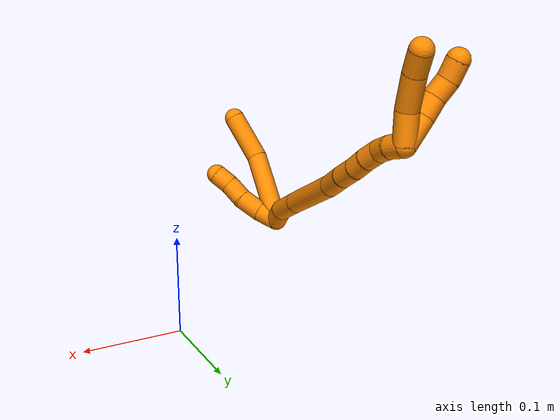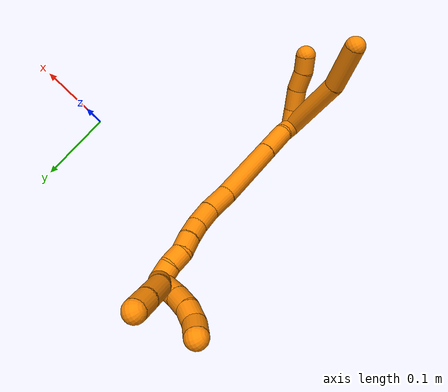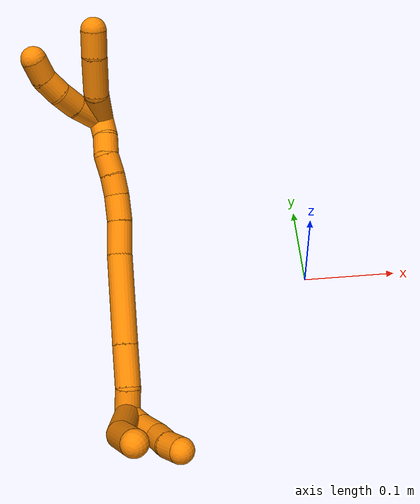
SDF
<sdf version="1.7">
 <world name="default">
  <model name="19">
   <static>0</static>
   <link name="19">
    <collision name="collision-cylinder-e_1_2_8">
     <pose>0.018782 0.003509 0.04082 -0.085746 0.42983 -0.018728</pose>
     <geometry><cylinder><radius>0.0125</radius><length>0.090141</length></cylinder></geometry>
     <surface>
      <friction><ode><mu>1.16</mu><mu2>1.16</mu2><slip1>0</slip1><slip2>0</slip2></ode></friction>
      <contact><ode><kp>1e+06</kp><kd>1</kd><max_vel>0</max_vel><min_depth>0.001</min_depth></ode></contact>
     </surface>
    </collision>
    <visual name="visual-cylinder-e_1_2_8">
     <pose>0.018782 0.003509 0.04082 -0.085746 0.42983 -0.018728</pose>
     <geometry><cylinder><radius>0.0125</radius><length>0.090141</length></cylinder></geometry>
     <material><ambient>0.996078 0.537255 0 1</ambient></material>
    </visual>
    <collision name="collision-cylinder-e_2_8_6">
     <pose>0.056872 0.006482 0.104503 0.023421 0.701189 0.008566</pose>
     <geometry><cylinder><radius>0.0125</radius><length>0.059859</length></cylinder></geometry>
     <surface>
      <friction><ode><mu>1.16</mu><mu2>1.16</mu2><slip1>0</slip1><slip2>0</slip2></ode></friction>
      <contact><ode><kp>1e+06</kp><kd>1</kd><max_vel>0</max_vel><min_depth>0.001</min_depth></ode></contact>
     </surface>
    </collision>
    <visual name="visual-cylinder-e_2_8_6">
     <pose>0.056872 0.006482 0.104503 0.023421 0.701189 0.008566</pose>
     <geometry><cylinder><radius>0.0125</radius><length>0.059859</length></cylinder></geometry>
     <material><ambient>0.996078 0.537255 0 1</ambient></material>
    </visual>
    <collision name="collision-cylinder-e_1_2_9">
     <pose>0.007206 -0.006854 0.007191 0.761363 0.627589 0.2583</pose>
     <geometry><cylinder><radius>0.0125</radius><length>0.024545</length></cylinder></geometry>
     <surface>
      <friction><ode><mu>1.16</mu><mu2>1.16</mu2><slip1>0</slip1><slip2>0</slip2></ode></friction>
      <contact><ode><kp>1e+06</kp><kd>1</kd><max_vel>0</max_vel><min_depth>0.001</min_depth></ode></contact>
     </surface>
    </collision>
    <visual name="visual-cylinder-e_1_2_9">
     <pose>0.007206 -0.006854 0.007191 0.761363 0.627589 0.2583</pose>
     <geometry><cylinder><radius>0.0125</radius><length>0.024545</length></cylinder></geometry>
     <material><ambient>0.996078 0.537255 0 1</ambient></material>
    </visual>
    <collision name="collision-cylinder-e_2_9_10">
     <pose>0.024142 -0.019498 0.022889 0.597696 0.757388 0.243948</pose>
     <geometry><cylinder><radius>0.0125</radius><length>0.028323</length></cylinder></geometry>
     <surface>
      <friction><ode><mu>1.16</mu><mu2>1.16</mu2><slip1>0</slip1><slip2>0</slip2></ode></friction>
      <contact><ode><kp>1e+06</kp><kd>1</kd><max_vel>0</max_vel><min_depth>0.001</min_depth></ode></contact>
     </surface>
    </collision>
    <visual name="visual-cylinder-e_2_9_10">
     <pose>0.024142 -0.019498 0.022889 0.597696 0.757388 0.243948</pose>
     <geometry><cylinder><radius>0.0125</radius><length>0.028323</length></cylinder></geometry>
     <material><ambient>0.996078 0.537255 0 1</ambient></material>
    </visual>
    <collision name="collision-cylinder-e_3_10_11">
     <pose>0.041636 -0.028437 0.040858 0.321171 0.661527 0.111127</pose>
     <geometry><cylinder><radius>0.0125</radius><length>0.025278</length></cylinder></geometry>
     <surface>
      <friction><ode><mu>1.16</mu><mu2>1.16</mu2><slip1>0</slip1><slip2>0</slip2></ode></friction>
      <contact><ode><kp>1e+06</kp><kd>1</kd><max_vel>0</max_vel><min_depth>0.001</min_depth></ode></contact>
     </surface>
    </collision>
    <visual name="visual-cylinder-e_3_10_11">
     <pose>0.041636 -0.028437 0.040858 0.321171 0.661527 0.111127</pose>
     <geometry><cylinder><radius>0.0125</radius><length>0.025278</length></cylinder></geometry>
     <material><ambient>0.996078 0.537255 0 1</ambient></material>
    </visual>
    <collision name="collision-cylinder-e_4_11_5">
     <pose>0.057528 -0.035138 0.056701 0.508078 0.838804 0.230506</pose>
     <geometry><cylinder><radius>0.0125</radius><length>0.021854</length></cylinder></geometry>
     <surface>
      <friction><ode><mu>1.16</mu><mu2>1.16</mu2><slip1>0</slip1><slip2>0</slip2></ode></friction>
      <contact><ode><kp>1e+06</kp><kd>1</kd><max_vel>0</max_vel><min_depth>0.001</min_depth></ode></contact>
     </surface>
    </collision>
    <visual name="visual-cylinder-e_4_11_5">
     <pose>0.057528 -0.035138 0.056701 0.508078 0.838804 0.230506</pose>
     <geometry><cylinder><radius>0.0125</radius><length>0.021854</length></cylinder></geometry>
     <material><ambient>0.996078 0.537255 0 1</ambient></material>
    </visual>
    <collision name="collision-cylinder-e_1_2_12">
     <pose>0.007463 0.01041 -0.003041 -1.85498 0.602716 -0.786058</pose>
     <geometry><cylinder><radius>0.0125</radius><length>0.02633</length></cylinder></geometry>
     <surface>
      <friction><ode><mu>1.16</mu><mu2>1.16</mu2><slip1>0</slip1><slip2>0</slip2></ode></friction>
      <contact><ode><kp>1e+06</kp><kd>1</kd><max_vel>0</max_vel><min_depth>0.001</min_depth></ode></contact>
     </surface>
    </collision>
    <visual name="visual-cylinder-e_1_2_12">
     <pose>0.007463 0.01041 -0.003041 -1.85498 0.602716 -0.786058</pose>
     <geometry><cylinder><radius>0.0125</radius><length>0.02633</length></cylinder></geometry>
     <material><ambient>0.996078 0.537255 0 1</ambient></material>
    </visual>
    <collision name="collision-cylinder-e_2_12_13">
     <pose>0.022274 0.037791 -0.015684 -2.08573 0.360396 -0.605586</pose>
     <geometry><cylinder><radius>0.0125</radius><length>0.041675</length></cylinder></geometry>
     <surface>
      <friction><ode><mu>1.16</mu><mu2>1.16</mu2><slip1>0</slip1><slip2>0</slip2></ode></friction>
      <contact><ode><kp>1e+06</kp><kd>1</kd><max_vel>0</max_vel><min_depth>0.001</min_depth></ode></contact>
     </surface>
    </collision>
    <visual name="visual-cylinder-e_2_12_13">
     <pose>0.022274 0.037791 -0.015684 -2.08573 0.360396 -0.605586</pose>
     <geometry><cylinder><radius>0.0125</radius><length>0.041675</length></cylinder></geometry>
     <material><ambient>0.996078 0.537255 0 1</ambient></material>
    </visual>
    <collision name="collision-cylinder-e_3_13_14">
     <pose>0.045083 0.090897 -0.046651 -2.10473 0.352881 -0.605833</pose>
     <geometry><cylinder><radius>0.0125</radius><length>0.089472</length></cylinder></geometry>
     <surface>
      <friction><ode><mu>1.16</mu><mu2>1.16</mu2><slip1>0</slip1><slip2>0</slip2></ode></friction>
      <contact><ode><kp>1e+06</kp><kd>1</kd><max_vel>0</max_vel><min_depth>0.001</min_depth></ode></contact>
     </surface>
    </collision>
    <visual name="visual-cylinder-e_3_13_14">
     <pose>0.045083 0.090897 -0.046651 -2.10473 0.352881 -0.605833</pose>
     <geometry><cylinder><radius>0.0125</radius><length>0.089472</length></cylinder></geometry>
     <material><ambient>0.996078 0.537255 0 1</ambient></material>
    </visual>
    <collision name="collision-cylinder-e_4_14_15">
     <pose>0.06789 0.14035 -0.075389 -2.07647 0.449654 -0.740297</pose>
     <geometry><cylinder><radius>0.0125</radius><length>0.033802</length></cylinder></geometry>
     <surface>
      <friction><ode><mu>1.16</mu><mu2>1.16</mu2><slip1>0</slip1><slip2>0</slip2></ode></friction>
      <contact><ode><kp>1e+06</kp><kd>1</kd><max_vel>0</max_vel><min_depth>0.001</min_depth></ode></contact>
     </surface>
    </collision>
    <visual name="visual-cylinder-e_4_14_15">
     <pose>0.06789 0.14035 -0.075389 -2.07647 0.449654 -0.740297</pose>
     <geometry><cylinder><radius>0.0125</radius><length>0.033802</length></cylinder></geometry>
     <material><ambient>0.996078 0.537255 0 1</ambient></material>
    </visual>
    <collision name="collision-cylinder-e_5_15_16">
     <pose>0.079903 0.165042 -0.087997 -2.00214 0.356747 -0.548701</pose>
     <geometry><cylinder><radius>0.0125</radius><length>0.026729</length></cylinder></geometry>
     <surface>
      <friction><ode><mu>1.16</mu><mu2>1.16</mu2><slip1>0</slip1><slip2>0</slip2></ode></friction>
      <contact><ode><kp>1e+06</kp><kd>1</kd><max_vel>0</max_vel><min_depth>0.001</min_depth></ode></contact>
     </surface>
    </collision>
    <visual name="visual-cylinder-e_5_15_16">
     <pose>0.079903 0.165042 -0.087997 -2.00214 0.356747 -0.548701</pose>
     <geometry><cylinder><radius>0.0125</radius><length>0.026729</length></cylinder></geometry>
     <material><ambient>0.996078 0.537255 0 1</ambient></material>
    </visual>
    <collision name="collision-cylinder-e_6_16_17">
     <pose>0.088075 0.185824 -0.095852 -1.84231 0.344604 -0.450411</pose>
     <geometry><cylinder><radius>0.0125</radius><length>0.020747</length></cylinder></geometry>
     <surface>
      <friction><ode><mu>1.16</mu><mu2>1.16</mu2><slip1>0</slip1><slip2>0</slip2></ode></friction>
      <contact><ode><kp>1e+06</kp><kd>1</kd><max_vel>0</max_vel><min_depth>0.001</min_depth></ode></contact>
     </surface>
    </collision>
    <visual name="visual-cylinder-e_6_16_17">
     <pose>0.088075 0.185824 -0.095852 -1.84231 0.344604 -0.450411</pose>
     <geometry><cylinder><radius>0.0125</radius><length>0.020747</length></cylinder></geometry>
     <material><ambient>0.996078 0.537255 0 1</ambient></material>
    </visual>
    <collision name="collision-cylinder-e_7_17_18">
     <pose>0.093994 0.204981 -0.101186 -1.84243 0.234164 -0.307271</pose>
     <geometry><cylinder><radius>0.0125</radius><length>0.020812</length></cylinder></geometry>
     <surface>
      <friction><ode><mu>1.16</mu><mu2>1.16</mu2><slip1>0</slip1><slip2>0</slip2></ode></friction>
      <contact><ode><kp>1e+06</kp><kd>1</kd><max_vel>0</max_vel><min_depth>0.001</min_depth></ode></contact>
     </surface>
    </collision>
    <visual name="visual-cylinder-e_7_17_18">
     <pose>0.093994 0.204981 -0.101186 -1.84243 0.234164 -0.307271</pose>
     <geometry><cylinder><radius>0.0125</radius><length>0.020812</length></cylinder></geometry>
     <material><ambient>0.996078 0.537255 0 1</ambient></material>
    </visual>
    <collision name="collision-cylinder-e_8_18_19">
     <pose>0.099592 0.222684 -0.109299 -2.1671 0.319832 -0.590993</pose>
     <geometry><cylinder><radius>0.0125</radius><length>0.02025</length></cylinder></geometry>
     <surface>
      <friction><ode><mu>1.16</mu><mu2>1.16</mu2><slip1>0</slip1><slip2>0</slip2></ode></friction>
      <contact><ode><kp>1e+06</kp><kd>1</kd><max_vel>0</max_vel><min_depth>0.001</min_depth></ode></contact>
     </surface>
    </collision>
    <visual name="visual-cylinder-e_8_18_19">
     <pose>0.099592 0.222684 -0.109299 -2.1671 0.319832 -0.590993</pose>
     <geometry><cylinder><radius>0.0125</radius><length>0.02025</length></cylinder></geometry>
     <material><ambient>0.996078 0.537255 0 1</ambient></material>
    </visual>
    <collision name="collision-cylinder-e_9_19_1">
     <pose>0.103648 0.238819 -0.12054 -2.19094 0.086559 -0.167889</pose>
     <geometry><cylinder><radius>0.0125</radius><length>0.020183</length></cylinder></geometry>
     <surface>
      <friction><ode><mu>1.16</mu><mu2>1.16</mu2><slip1>0</slip1><slip2>0</slip2></ode></friction>
      <contact><ode><kp>1e+06</kp><kd>1</kd><max_vel>0</max_vel><min_depth>0.001</min_depth></ode></contact>
     </surface>
    </collision>
    <visual name="visual-cylinder-e_9_19_1">
     <pose>0.103648 0.238819 -0.12054 -2.19094 0.086559 -0.167889</pose>
     <geometry><cylinder><radius>0.0125</radius><length>0.020183</length></cylinder></geometry>
     <material><ambient>0.996078 0.537255 0 1</ambient></material>
    </visual>
    <collision name="collision-cylinder-e_1_1_20">
     <pose>0.103251 0.259255 -0.114714 -0.80989 -0.074875 0.032106</pose>
     <geometry><cylinder><radius>0.0125</radius><length>0.033937</length></cylinder></geometry>
     <surface>
      <friction><ode><mu>1.16</mu><mu2>1.16</mu2><slip1>0</slip1><slip2>0</slip2></ode></friction>
      <contact><ode><kp>1e+06</kp><kd>1</kd><max_vel>0</max_vel><min_depth>0.001</min_depth></ode></contact>
     </surface>
    </collision>
    <visual name="visual-cylinder-e_1_1_20">
     <pose>0.103251 0.259255 -0.114714 -0.80989 -0.074875 0.032106</pose>
     <geometry><cylinder><radius>0.0125</radius><length>0.033937</length></cylinder></geometry>
     <material><ambient>0.996078 0.537255 0 1</ambient></material>
    </visual>
    <collision name="collision-cylinder-e_2_20_21">
     <pose>0.102472 0.280517 -0.095864 -0.897702 0.042537 -0.02049</pose>
     <geometry><cylinder><radius>0.0125</radius><length>0.023062</length></cylinder></geometry>
     <surface>
      <friction><ode><mu>1.16</mu><mu2>1.16</mu2><slip1>0</slip1><slip2>0</slip2></ode></friction>
      <contact><ode><kp>1e+06</kp><kd>1</kd><max_vel>0</max_vel><min_depth>0.001</min_depth></ode></contact>
     </surface>
    </collision>
    <visual name="visual-cylinder-e_2_20_21">
     <pose>0.102472 0.280517 -0.095864 -0.897702 0.042537 -0.02049</pose>
     <geometry><cylinder><radius>0.0125</radius><length>0.023062</length></cylinder></geometry>
     <material><ambient>0.996078 0.537255 0 1</ambient></material>
    </visual>
    <collision name="collision-cylinder-e_3_21_22">
     <pose>0.103419 0.299044 -0.083993 -1.11312 0.043057 -0.026791</pose>
     <geometry><cylinder><radius>0.0125</radius><length>0.021242</length></cylinder></geometry>
     <surface>
      <friction><ode><mu>1.16</mu><mu2>1.16</mu2><slip1>0</slip1><slip2>0</slip2></ode></friction>
      <contact><ode><kp>1e+06</kp><kd>1</kd><max_vel>0</max_vel><min_depth>0.001</min_depth></ode></contact>
     </surface>
    </collision>
    <visual name="visual-cylinder-e_3_21_22">
     <pose>0.103419 0.299044 -0.083993 -1.11312 0.043057 -0.026791</pose>
     <geometry><cylinder><radius>0.0125</radius><length>0.021242</length></cylinder></geometry>
     <material><ambient>0.996078 0.537255 0 1</ambient></material>
    </visual>
    <collision name="collision-cylinder-e_4_22_4">
     <pose>0.107704 0.317908 -0.075257 -1.16209 0.359487 -0.237515</pose>
     <geometry><cylinder><radius>0.0125</radius><length>0.02176</length></cylinder></geometry>
     <surface>
      <friction><ode><mu>1.16</mu><mu2>1.16</mu2><slip1>0</slip1><slip2>0</slip2></ode></friction>
      <contact><ode><kp>1e+06</kp><kd>1</kd><max_vel>0</max_vel><min_depth>0.001</min_depth></ode></contact>
     </surface>
    </collision>
    <visual name="visual-cylinder-e_4_22_4">
     <pose>0.107704 0.317908 -0.075257 -1.16209 0.359487 -0.237515</pose>
     <geometry><cylinder><radius>0.0125</radius><length>0.02176</length></cylinder></geometry>
     <material><ambient>0.996078 0.537255 0 1</ambient></material>
    </visual>
    <collision name="collision-cylinder-e_1_1_23">
     <pose>0.115043 0.25783 -0.117411 -0.878913 0.642389 -0.310316</pose>
     <geometry><cylinder><radius>0.0125</radius><length>0.035128</length></cylinder></geometry>
     <surface>
      <friction><ode><mu>1.16</mu><mu2>1.16</mu2><slip1>0</slip1><slip2>0</slip2></ode></friction>
      <contact><ode><kp>1e+06</kp><kd>1</kd><max_vel>0</max_vel><min_depth>0.001</min_depth></ode></contact>
     </surface>
    </collision>
    <visual name="visual-cylinder-e_1_1_23">
     <pose>0.115043 0.25783 -0.117411 -0.878913 0.642389 -0.310316</pose>
     <geometry><cylinder><radius>0.0125</radius><length>0.035128</length></cylinder></geometry>
     <material><ambient>0.996078 0.537255 0 1</ambient></material>
    </visual>
    <collision name="collision-cylinder-e_2_23_24">
     <pose>0.138494 0.282986 -0.104545 -1.30546 0.716444 -0.557531</pose>
     <geometry><cylinder><radius>0.0125</radius><length>0.039374</length></cylinder></geometry>
     <surface>
      <friction><ode><mu>1.16</mu><mu2>1.16</mu2><slip1>0</slip1><slip2>0</slip2></ode></friction>
      <contact><ode><kp>1e+06</kp><kd>1</kd><max_vel>0</max_vel><min_depth>0.001</min_depth></ode></contact>
     </surface>
    </collision>
    <visual name="visual-cylinder-e_2_23_24">
     <pose>0.138494 0.282986 -0.104545 -1.30546 0.716444 -0.557531</pose>
     <geometry><cylinder><radius>0.0125</radius><length>0.039374</length></cylinder></geometry>
     <material><ambient>0.996078 0.537255 0 1</ambient></material>
    </visual>
    <collision name="collision-cylinder-e_3_24_3">
     <pose>0.159627 0.307017 -0.099615 -1.46431 0.699087 -0.63321</pose>
     <geometry><cylinder><radius>0.0125</radius><length>0.025498</length></cylinder></geometry>
     <surface>
      <friction><ode><mu>1.16</mu><mu2>1.16</mu2><slip1>0</slip1><slip2>0</slip2></ode></friction>
      <contact><ode><kp>1e+06</kp><kd>1</kd><max_vel>0</max_vel><min_depth>0.001</min_depth></ode></contact>
     </surface>
    </collision>
    <visual name="visual-cylinder-e_3_24_3">
     <pose>0.159627 0.307017 -0.099615 -1.46431 0.699087 -0.63321</pose>
     <geometry><cylinder><radius>0.0125</radius><length>0.025498</length></cylinder></geometry>
     <material><ambient>0.996078 0.537255 0 1</ambient></material>
    </visual>
    <collision name="collision-sphere-3">
     <pose>0.167831 0.31672 -0.098578 0 -0 0</pose>
     <geometry><sphere><radius>0.0125</radius></sphere></geometry>
     <surface>
      <friction><ode><mu>1.16</mu><mu2>1.16</mu2><slip1>0</slip1><slip2>0</slip2></ode></friction>
      <contact><ode><kp>1e+06</kp><kd>1</kd><max_vel>0</max_vel><min_depth>0.001</min_depth></ode></contact>
     </surface>
    </collision>
    <visual name="visual-sphere-3">
     <pose>0.167831 0.31672 -0.098578 0 -0 0</pose>
     <geometry><sphere><radius>0.0125</radius></sphere></geometry>
     <material><ambient>0.996078 0.537255 0 1</ambient></material>
    </visual>
    <collision name="collision-sphere-24">
     <pose>0.151423 0.297314 -0.100652 0 -0 0</pose>
     <geometry><sphere><radius>0.0125</radius></sphere></geometry>
     <surface>
      <friction><ode><mu>1.16</mu><mu2>1.16</mu2><slip1>0</slip1><slip2>0</slip2></ode></friction>
      <contact><ode><kp>1e+06</kp><kd>1</kd><max_vel>0</max_vel><min_depth>0.001</min_depth></ode></contact>
     </surface>
    </collision>
    <visual name="visual-sphere-24">
     <pose>0.151423 0.297314 -0.100652 0 -0 0</pose>
     <geometry><sphere><radius>0.0125</radius></sphere></geometry>
     <material><ambient>0.996078 0.537255 0 1</ambient></material>
    </visual>
    <collision name="collision-sphere-23">
     <pose>0.125566 0.268659 -0.108439 0 -0 0</pose>
     <geometry><sphere><radius>0.0125</radius></sphere></geometry>
     <surface>
      <friction><ode><mu>1.16</mu><mu2>1.16</mu2><slip1>0</slip1><slip2>0</slip2></ode></friction>
      <contact><ode><kp>1e+06</kp><kd>1</kd><max_vel>0</max_vel><min_depth>0.001</min_depth></ode></contact>
     </surface>
    </collision>
    <visual name="visual-sphere-23">
     <pose>0.125566 0.268659 -0.108439 0 -0 0</pose>
     <geometry><sphere><radius>0.0125</radius></sphere></geometry>
     <material><ambient>0.996078 0.537255 0 1</ambient></material>
    </visual>
    <collision name="collision-sphere-4">
     <pose>0.111531 0.327254 -0.07121 0 -0 0</pose>
     <geometry><sphere><radius>0.0125</radius></sphere></geometry>
     <surface>
      <friction><ode><mu>1.16</mu><mu2>1.16</mu2><slip1>0</slip1><slip2>0</slip2></ode></friction>
      <contact><ode><kp>1e+06</kp><kd>1</kd><max_vel>0</max_vel><min_depth>0.001</min_depth></ode></contact>
     </surface>
    </collision>
    <visual name="visual-sphere-4">
     <pose>0.111531 0.327254 -0.07121 0 -0 0</pose>
     <geometry><sphere><radius>0.0125</radius></sphere></geometry>
     <material><ambient>0.996078 0.537255 0 1</ambient></material>
    </visual>
    <collision name="collision-sphere-22">
     <pose>0.103877 0.308563 -0.079305 0 -0 0</pose>
     <geometry><sphere><radius>0.0125</radius></sphere></geometry>
     <surface>
      <friction><ode><mu>1.16</mu><mu2>1.16</mu2><slip1>0</slip1><slip2>0</slip2></ode></friction>
      <contact><ode><kp>1e+06</kp><kd>1</kd><max_vel>0</max_vel><min_depth>0.001</min_depth></ode></contact>
     </surface>
    </collision>
    <visual name="visual-sphere-22">
     <pose>0.103877 0.308563 -0.079305 0 -0 0</pose>
     <geometry><sphere><radius>0.0125</radius></sphere></geometry>
     <material><ambient>0.996078 0.537255 0 1</ambient></material>
    </visual>
    <collision name="collision-sphere-21">
     <pose>0.102962 0.289525 -0.088682 0 -0 0</pose>
     <geometry><sphere><radius>0.0125</radius></sphere></geometry>
     <surface>
      <friction><ode><mu>1.16</mu><mu2>1.16</mu2><slip1>0</slip1><slip2>0</slip2></ode></friction>
      <contact><ode><kp>1e+06</kp><kd>1</kd><max_vel>0</max_vel><min_depth>0.001</min_depth></ode></contact>
     </surface>
    </collision>
    <visual name="visual-sphere-21">
     <pose>0.102962 0.289525 -0.088682 0 -0 0</pose>
     <geometry><sphere><radius>0.0125</radius></sphere></geometry>
     <material><ambient>0.996078 0.537255 0 1</ambient></material>
    </visual>
    <collision name="collision-sphere-20">
     <pose>0.101982 0.271509 -0.103046 0 -0 0</pose>
     <geometry><sphere><radius>0.0125</radius></sphere></geometry>
     <surface>
      <friction><ode><mu>1.16</mu><mu2>1.16</mu2><slip1>0</slip1><slip2>0</slip2></ode></friction>
      <contact><ode><kp>1e+06</kp><kd>1</kd><max_vel>0</max_vel><min_depth>0.001</min_depth></ode></contact>
     </surface>
    </collision>
    <visual name="visual-sphere-20">
     <pose>0.101982 0.271509 -0.103046 0 -0 0</pose>
     <geometry><sphere><radius>0.0125</radius></sphere></geometry>
     <material><ambient>0.996078 0.537255 0 1</ambient></material>
    </visual>
    <collision name="collision-sphere-11">
     <pose>0.0494 -0.031585 0.050321 0 -0 0</pose>
     <geometry><sphere><radius>0.0125</radius></sphere></geometry>
     <surface>
      <friction><ode><mu>1.16</mu><mu2>1.16</mu2><slip1>0</slip1><slip2>0</slip2></ode></friction>
      <contact><ode><kp>1e+06</kp><kd>1</kd><max_vel>0</max_vel><min_depth>0.001</min_depth></ode></contact>
     </surface>
    </collision>
    <visual name="visual-sphere-11">
     <pose>0.0494 -0.031585 0.050321 0 -0 0</pose>
     <geometry><sphere><radius>0.0125</radius></sphere></geometry>
     <material><ambient>0.996078 0.537255 0 1</ambient></material>
    </visual>
    <collision name="collision-sphere-10">
     <pose>0.033871 -0.025289 0.031395 0 -0 0</pose>
     <geometry><sphere><radius>0.0125</radius></sphere></geometry>
     <surface>
      <friction><ode><mu>1.16</mu><mu2>1.16</mu2><slip1>0</slip1><slip2>0</slip2></ode></friction>
      <contact><ode><kp>1e+06</kp><kd>1</kd><max_vel>0</max_vel><min_depth>0.001</min_depth></ode></contact>
     </surface>
    </collision>
    <visual name="visual-sphere-10">
     <pose>0.033871 -0.025289 0.031395 0 -0 0</pose>
     <geometry><sphere><radius>0.0125</radius></sphere></geometry>
     <material><ambient>0.996078 0.537255 0 1</ambient></material>
    </visual>
    <collision name="collision-sphere-6">
     <pose>0.07618 0.005946 0.127365 0 -0 0</pose>
     <geometry><sphere><radius>0.0125</radius></sphere></geometry>
     <surface>
      <friction><ode><mu>1.16</mu><mu2>1.16</mu2><slip1>0</slip1><slip2>0</slip2></ode></friction>
      <contact><ode><kp>1e+06</kp><kd>1</kd><max_vel>0</max_vel><min_depth>0.001</min_depth></ode></contact>
     </surface>
    </collision>
    <visual name="visual-sphere-6">
     <pose>0.07618 0.005946 0.127365 0 -0 0</pose>
     <geometry><sphere><radius>0.0125</radius></sphere></geometry>
     <material><ambient>0.996078 0.537255 0 1</ambient></material>
    </visual>
    <collision name="collision-sphere-9">
     <pose>0.014413 -0.013707 0.014382 0 -0 0</pose>
     <geometry><sphere><radius>0.0125</radius></sphere></geometry>
     <surface>
      <friction><ode><mu>1.16</mu><mu2>1.16</mu2><slip1>0</slip1><slip2>0</slip2></ode></friction>
      <contact><ode><kp>1e+06</kp><kd>1</kd><max_vel>0</max_vel><min_depth>0.001</min_depth></ode></contact>
     </surface>
    </collision>
    <visual name="visual-sphere-9">
     <pose>0.014413 -0.013707 0.014382 0 -0 0</pose>
     <geometry><sphere><radius>0.0125</radius></sphere></geometry>
     <material><ambient>0.996078 0.537255 0 1</ambient></material>
    </visual>
    <collision name="collision-sphere-2">
     <geometry><sphere><radius>0.0125</radius></sphere></geometry>
     <surface>
      <friction><ode><mu>1.16</mu><mu2>1.16</mu2><slip1>0</slip1><slip2>0</slip2></ode></friction>
      <contact><ode><kp>1e+06</kp><kd>1</kd><max_vel>0</max_vel><min_depth>0.001</min_depth></ode></contact>
     </surface>
    </collision>
    <visual name="visual-sphere-2">
     <geometry><sphere><radius>0.0125</radius></sphere></geometry>
     <material><ambient>0.996078 0.537255 0 1</ambient></material>
    </visual>
    <collision name="collision-sphere-19">
     <pose>0.102775 0.230637 -0.114697 0 -0 0</pose>
     <geometry><sphere><radius>0.0125</radius></sphere></geometry>
     <surface>
      <friction><ode><mu>1.16</mu><mu2>1.16</mu2><slip1>0</slip1><slip2>0</slip2></ode></friction>
      <contact><ode><kp>1e+06</kp><kd>1</kd><max_vel>0</max_vel><min_depth>0.001</min_depth></ode></contact>
     </surface>
    </collision>
    <visual name="visual-sphere-19">
     <pose>0.102775 0.230637 -0.114697 0 -0 0</pose>
     <geometry><sphere><radius>0.0125</radius></sphere></geometry>
     <material><ambient>0.996078 0.537255 0 1</ambient></material>
    </visual>
    <collision name="collision-sphere-8">
     <pose>0.037563 0.007018 0.081641 0 -0 0</pose>
     <geometry><sphere><radius>0.0125</radius></sphere></geometry>
     <surface>
      <friction><ode><mu>1.16</mu><mu2>1.16</mu2><slip1>0</slip1><slip2>0</slip2></ode></friction>
      <contact><ode><kp>1e+06</kp><kd>1</kd><max_vel>0</max_vel><min_depth>0.001</min_depth></ode></contact>
     </surface>
    </collision>
    <visual name="visual-sphere-8">
     <pose>0.037563 0.007018 0.081641 0 -0 0</pose>
     <geometry><sphere><radius>0.0125</radius></sphere></geometry>
     <material><ambient>0.996078 0.537255 0 1</ambient></material>
    </visual>
    <collision name="collision-sphere-5">
     <pose>0.065656 -0.038691 0.063082 0 -0 0</pose>
     <geometry><sphere><radius>0.0125</radius></sphere></geometry>
     <surface>
      <friction><ode><mu>1.16</mu><mu2>1.16</mu2><slip1>0</slip1><slip2>0</slip2></ode></friction>
      <contact><ode><kp>1e+06</kp><kd>1</kd><max_vel>0</max_vel><min_depth>0.001</min_depth></ode></contact>
     </surface>
    </collision>
    <visual name="visual-sphere-5">
     <pose>0.065656 -0.038691 0.063082 0 -0 0</pose>
     <geometry><sphere><radius>0.0125</radius></sphere></geometry>
     <material><ambient>0.996078 0.537255 0 1</ambient></material>
    </visual>
    <collision name="collision-sphere-12">
     <pose>0.014926 0.02082 -0.006081 0 -0 0</pose>
     <geometry><sphere><radius>0.0125</radius></sphere></geometry>
     <surface>
      <friction><ode><mu>1.16</mu><mu2>1.16</mu2><slip1>0</slip1><slip2>0</slip2></ode></friction>
      <contact><ode><kp>1e+06</kp><kd>1</kd><max_vel>0</max_vel><min_depth>0.001</min_depth></ode></contact>
     </surface>
    </collision>
    <visual name="visual-sphere-12">
     <pose>0.014926 0.02082 -0.006081 0 -0 0</pose>
     <geometry><sphere><radius>0.0125</radius></sphere></geometry>
     <material><ambient>0.996078 0.537255 0 1</ambient></material>
    </visual>
    <collision name="collision-sphere-13">
     <pose>0.029622 0.054761 -0.025287 0 -0 0</pose>
     <geometry><sphere><radius>0.0125</radius></sphere></geometry>
     <surface>
      <friction><ode><mu>1.16</mu><mu2>1.16</mu2><slip1>0</slip1><slip2>0</slip2></ode></friction>
      <contact><ode><kp>1e+06</kp><kd>1</kd><max_vel>0</max_vel><min_depth>0.001</min_depth></ode></contact>
     </surface>
    </collision>
    <visual name="visual-sphere-13">
     <pose>0.029622 0.054761 -0.025287 0 -0 0</pose>
     <geometry><sphere><radius>0.0125</radius></sphere></geometry>
     <material><ambient>0.996078 0.537255 0 1</ambient></material>
    </visual>
    <collision name="collision-sphere-14">
     <pose>0.060544 0.127034 -0.068016 0 -0 0</pose>
     <geometry><sphere><radius>0.0125</radius></sphere></geometry>
     <surface>
      <friction><ode><mu>1.16</mu><mu2>1.16</mu2><slip1>0</slip1><slip2>0</slip2></ode></friction>
      <contact><ode><kp>1e+06</kp><kd>1</kd><max_vel>0</max_vel><min_depth>0.001</min_depth></ode></contact>
     </surface>
    </collision>
    <visual name="visual-sphere-14">
     <pose>0.060544 0.127034 -0.068016 0 -0 0</pose>
     <geometry><sphere><radius>0.0125</radius></sphere></geometry>
     <material><ambient>0.996078 0.537255 0 1</ambient></material>
    </visual>
    <collision name="collision-sphere-15">
     <pose>0.075236 0.153666 -0.082762 0 -0 0</pose>
     <geometry><sphere><radius>0.0125</radius></sphere></geometry>
     <surface>
      <friction><ode><mu>1.16</mu><mu2>1.16</mu2><slip1>0</slip1><slip2>0</slip2></ode></friction>
      <contact><ode><kp>1e+06</kp><kd>1</kd><max_vel>0</max_vel><min_depth>0.001</min_depth></ode></contact>
     </surface>
    </collision>
    <visual name="visual-sphere-15">
     <pose>0.075236 0.153666 -0.082762 0 -0 0</pose>
     <geometry><sphere><radius>0.0125</radius></sphere></geometry>
     <material><ambient>0.996078 0.537255 0 1</ambient></material>
    </visual>
    <collision name="collision-sphere-16">
     <pose>0.084571 0.176418 -0.093233 0 -0 0</pose>
     <geometry><sphere><radius>0.0125</radius></sphere></geometry>
     <surface>
      <friction><ode><mu>1.16</mu><mu2>1.16</mu2><slip1>0</slip1><slip2>0</slip2></ode></friction>
      <contact><ode><kp>1e+06</kp><kd>1</kd><max_vel>0</max_vel><min_depth>0.001</min_depth></ode></contact>
     </surface>
    </collision>
    <visual name="visual-sphere-16">
     <pose>0.084571 0.176418 -0.093233 0 -0 0</pose>
     <geometry><sphere><radius>0.0125</radius></sphere></geometry>
     <material><ambient>0.996078 0.537255 0 1</ambient></material>
    </visual>
    <collision name="collision-sphere-17">
     <pose>0.09158 0.19523 -0.09847 0 -0 0</pose>
     <geometry><sphere><radius>0.0125</radius></sphere></geometry>
     <surface>
      <friction><ode><mu>1.16</mu><mu2>1.16</mu2><slip1>0</slip1><slip2>0</slip2></ode></friction>
      <contact><ode><kp>1e+06</kp><kd>1</kd><max_vel>0</max_vel><min_depth>0.001</min_depth></ode></contact>
     </surface>
    </collision>
    <visual name="visual-sphere-17">
     <pose>0.09158 0.19523 -0.09847 0 -0 0</pose>
     <geometry><sphere><radius>0.0125</radius></sphere></geometry>
     <material><ambient>0.996078 0.537255 0 1</ambient></material>
    </visual>
    <collision name="collision-sphere-18">
     <pose>0.096409 0.214732 -0.103902 0 -0 0</pose>
     <geometry><sphere><radius>0.0125</radius></sphere></geometry>
     <surface>
      <friction><ode><mu>1.16</mu><mu2>1.16</mu2><slip1>0</slip1><slip2>0</slip2></ode></friction>
      <contact><ode><kp>1e+06</kp><kd>1</kd><max_vel>0</max_vel><min_depth>0.001</min_depth></ode></contact>
     </surface>
    </collision>
    <visual name="visual-sphere-18">
     <pose>0.096409 0.214732 -0.103902 0 -0 0</pose>
     <geometry><sphere><radius>0.0125</radius></sphere></geometry>
     <material><ambient>0.996078 0.537255 0 1</ambient></material>
    </visual>
    <collision name="collision-sphere-1">
     <pose>0.10452 0.247001 -0.126383 0 -0 0</pose>
     <geometry><sphere><radius>0.0125</radius></sphere></geometry>
     <surface>
      <friction><ode><mu>1.16</mu><mu2>1.16</mu2><slip1>0</slip1><slip2>0</slip2></ode></friction>
      <contact><ode><kp>1e+06</kp><kd>1</kd><max_vel>0</max_vel><min_depth>0.001</min_depth></ode></contact>
     </surface>
    </collision>
    <visual name="visual-sphere-1">
     <pose>0.10452 0.247001 -0.126383 0 -0 0</pose>
     <geometry><sphere><radius>0.0125</radius></sphere></geometry>
     <material><ambient>0.996078 0.537255 0 1</ambient></material>
    </visual>
    <inertial>
     <pose>0.066294 0.1222 -0.034431 0 -0 0</pose>
     <mass>0.75</mass>
     <inertia>
      <ixx>0.000141</ixx>
      <ixy>0</ixy>
      <ixz>0</ixz>
      <iyy>6.6e-05</iyy>
      <iyz>0</iyz>
      <izz>-0.000163</izz>
     </inertia>
    </inertial>
   </link>
   <pose>-0.200351 -0.173046 0.032156 0.897211 -0.683325 0.066007</pose>
  </model>
 </world>
</sdf>
